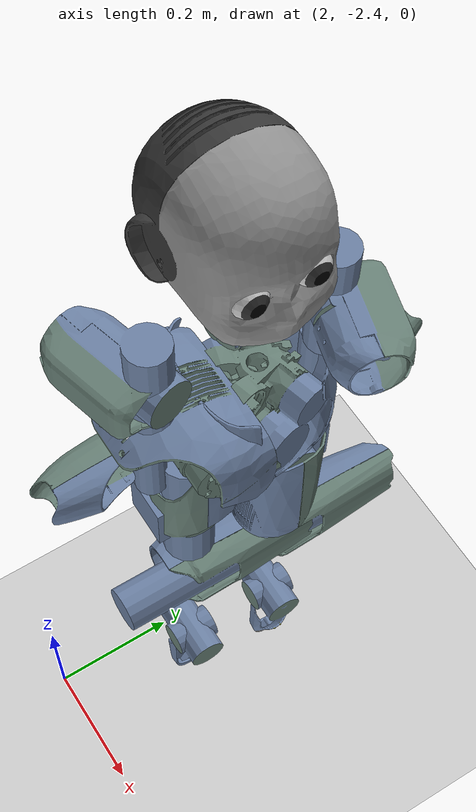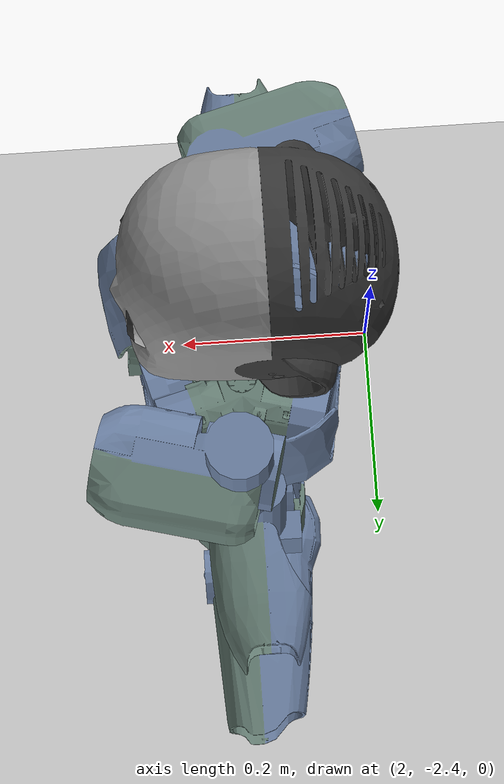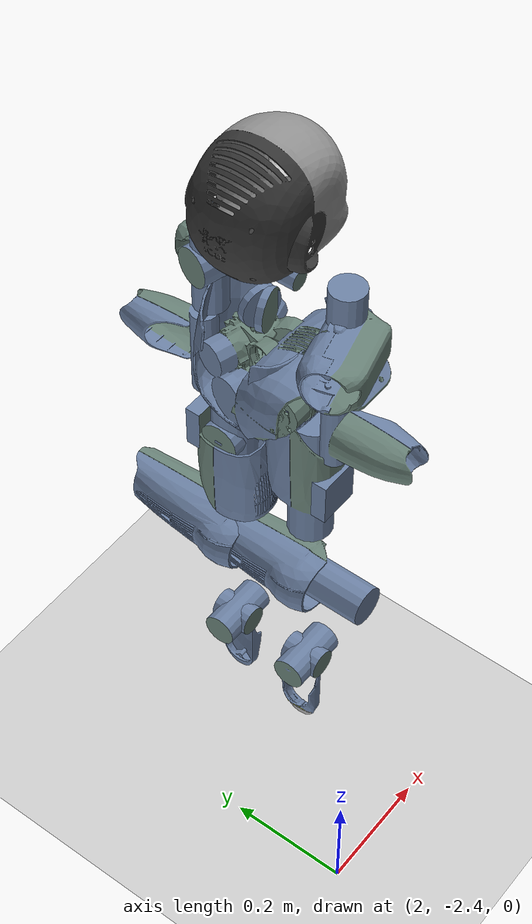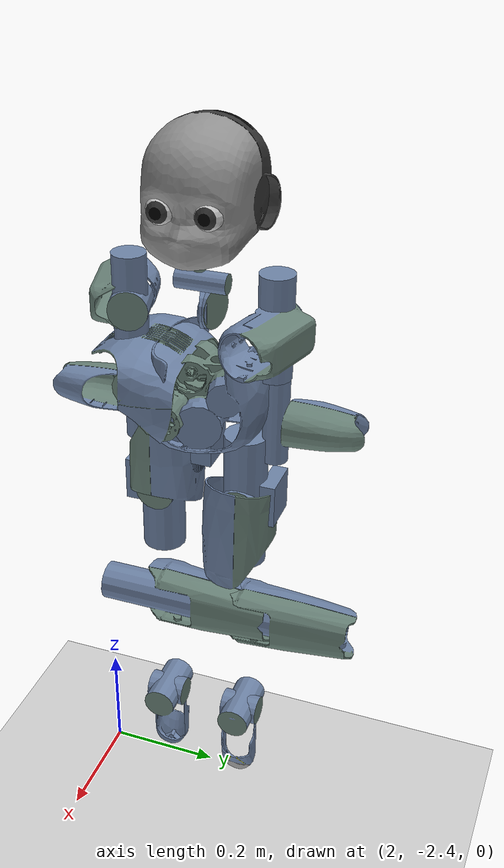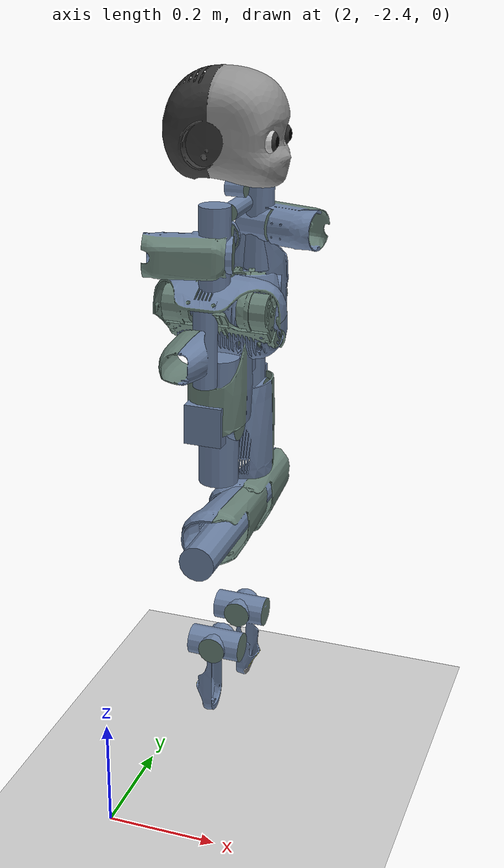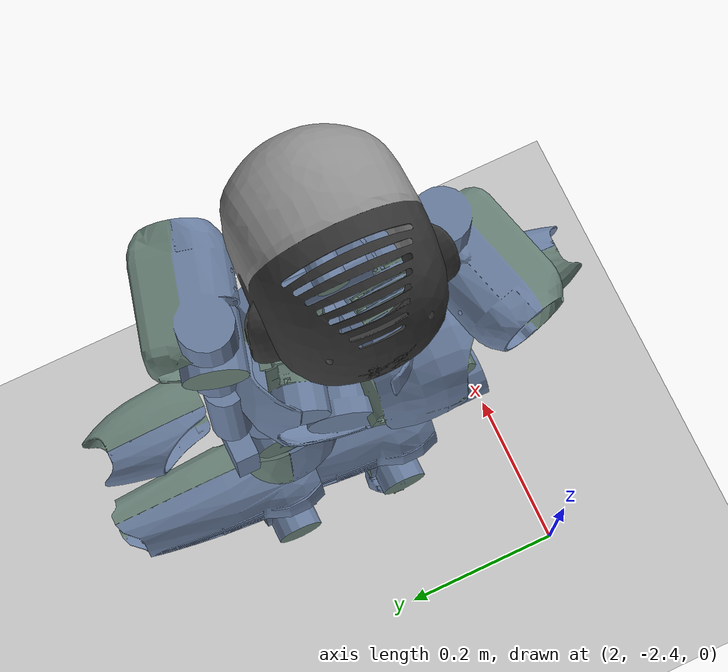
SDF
<sdf version="1.6">
 <world name="default">
  <model name="ground_plane">
   <static>1</static>
   <link name="link">
    <collision name="collision">
     <geometry><plane><normal>0 0 1</normal><size>100 100</size></plane></geometry>
     <surface><friction><ode><mu>100</mu><mu2>50</mu2></ode></friction></surface>
    </collision>
    <visual name="visual">
     <cast_shadows>0</cast_shadows>
     <geometry><plane><normal>0 0 1</normal><size>100 100</size></plane></geometry>
     <material>
      <script><uri>file://media/materials/scripts/gazebo.material</uri><name>Gazebo/Grey</name></script>
     </material>
    </visual>
   </link>
  </model>
  <model name="iCub">
   <pose>2.14823 -2.15649 0.858345 -9e-06 -0.009093 3.14</pose>
   <link name="root_link">
    <inertial>
     <mass>4.72</mass>
     <inertia><ixx>0.01</ixx><ixy>0</ixy><ixz>0</ixz><iyy>0.01</iyy><iyz>0</iyz><izz>0.01</izz></inertia>
    </inertial>
    <collision name="root_link_collision">
     <geometry>
      <mesh><scale>1 1 1</scale><uri>model://icub/meshes/collision/icub_simple_collision_root_link.dae</uri></mesh>
     </geometry>
    </collision>
    <visual name="root_link_visual">
     <geometry><mesh><scale>1 1 1</scale><uri>model://icub/meshes/visual/icub_root_link.dae</uri></mesh></geometry>
    </visual>
   </link>
   <link name="l_hip_1">
    <pose>0 -0.0681 -0.1199 3e-06 1.57079 3.14159</pose>
    <inertial>
     <pose>0 -0.0782 0 0 -0 0</pose>
     <mass>0.754</mass>
     <inertia>
      <ixx>0.01</ixx>
      <ixy>2.059e-06</ixy>
      <ixz>1.451e-06</ixz>
      <iyy>0.01</iyy>
      <iyz>1.545e-06</iyz>
      <izz>0.01</izz>
     </inertia>
    </inertial>
    <collision name="l_hip_1_collision">
     <pose>0 0 0 -0.785403 1.57079 -2.35619</pose>
     <geometry>
      <mesh><scale>1 1 1</scale><uri>model://icub/meshes/collision/icub_simple_collision_l_hip_1.dae</uri></mesh>
     </geometry>
    </collision>
    <visual name="l_hip_1_visual">
     <pose>0 0 0 -0.785403 1.57079 -2.35619</pose>
     <geometry><mesh><scale>1 1 1</scale><uri>model://icub/meshes/visual/icub_l_hip_1.dae</uri></mesh></geometry>
    </visual>
   </link>
   <joint name="l_hip_pitch" type="revolute">
    <child>l_hip_1</child>
    <parent>root_link</parent>
    <axis>
     <xyz>3e-06 1 0</xyz>
     <limit><lower>-0.767945</lower><upper>2.30383</upper><effort>84</effort><velocity>100</velocity></limit>
     <dynamics>
      <damping>1</damping>
      <friction>0</friction>
      <spring_reference>0</spring_reference>
      <spring_stiffness>0</spring_stiffness>
     </dynamics>
     <use_parent_model_frame>1</use_parent_model_frame>
    </axis>
   </joint>
   <link name="l_hip_2">
    <pose>0 -0.0681 -0.1199 3.14159 -7e-06 3.14159</pose>
    <inertial>
     <pose>0 0 0.03045 0 -0 0</pose>
     <mass>0.526</mass>
     <inertia>
      <ixx>0.01</ixx>
      <ixy>-7.4e-08</ixy>
      <ixz>1.0835e-05</ixz>
      <iyy>0.01</iyy>
      <iyz>-6.2e-08</iyz>
      <izz>0.01</izz>
     </inertia>
    </inertial>
    <collision name="l_hip_2_collision">
     <pose>0 0 0 0.785363 -1.57079 2.35623</pose>
     <geometry>
      <mesh><scale>1 1 1</scale><uri>model://icub/meshes/collision/icub_simple_collision_l_hip_2.dae</uri></mesh>
     </geometry>
    </collision>
    <visual name="l_hip_2_visual">
     <pose>0 0 0 0.785363 -1.57079 2.35623</pose>
     <geometry><mesh><scale>1 1 1</scale><uri>model://icub/meshes/visual/icub_l_hip_2.dae</uri></mesh></geometry>
    </visual>
   </link>
   <joint name="l_hip_roll" type="revolute">
    <child>l_hip_2</child>
    <parent>l_hip_1</parent>
    <axis>
     <xyz>-1 3e-06 7e-06</xyz>
     <limit><lower>-0.296706</lower><upper>2.07694</upper><effort>84</effort><velocity>100</velocity></limit>
     <dynamics>
      <damping>1</damping>
      <friction>0</friction>
      <spring_reference>0</spring_reference>
      <spring_stiffness>0</spring_stiffness>
     </dynamics>
     <use_parent_model_frame>1</use_parent_model_frame>
    </axis>
   </joint>
   <link name="l_hip_3">
    <pose>-0 -0.0681 -0.1864 3.14159 -7e-06 3.14159</pose>
    <inertial>
     <mass>0.1</mass>
     <inertia><ixx>0.01</ixx><ixy>0</ixy><ixz>0</ixz><iyy>0.01</iyy><iyz>0</iyz><izz>0.01</izz></inertia>
    </inertial>
   </link>
   <joint name="l_leg_ft_sensor" type="revolute">
    <child>l_hip_3</child>
    <parent>l_hip_2</parent>
    <axis>
     <xyz>0 0 0</xyz>
     <limit><lower>0</lower><upper>0</upper><effort>0</effort><velocity>0</velocity></limit>
     <dynamics><spring_reference>0</spring_reference><spring_stiffness>0</spring_stiffness></dynamics>
     <use_parent_model_frame>1</use_parent_model_frame>
    </axis>
    <sensor name="left_leg_ft" type="force_torque">
     <always_on>1</always_on>
     <update_rate>100</update_rate>
     <plugin name="left_leg_ft_plugin" filename="libgazebo_yarp_forcetorque.so">
      <yarpConfigurationFile>model://icub/conf/FT/gazebo_icub_left_leg_ft.ini</yarpConfigurationFile>
     </plugin>
    </sensor>
   </joint>
   <link name="l_upper_leg">
    <pose>0 -0.0681 -0.1199 1.57079 -7e-06 3.14159</pose>
    <inertial>
     <pose>0.00144 -0.15943 -0.00039 0 -0 0</pose>
     <mass>2.175</mass>
     <inertia>
      <ixx>0.01</ixx>
      <ixy>-6.726e-05</ixy>
      <ixz>2.267e-06</ixz>
      <iyy>0.01</iyy>
      <iyz>3.63726e-05</iyz>
      <izz>0.01</izz>
     </inertia>
    </inertial>
    <collision name="l_upper_leg_collision">
     <pose>0 0 0 -2.67797 1.57079 -1.10716</pose>
     <geometry>
      <mesh><scale>1 1 1</scale><uri>model://icub/meshes/collision/icub_simple_collision_l_thigh.dae</uri></mesh>
     </geometry>
    </collision>
    <visual name="l_upper_leg_visual">
     <pose>0 0 0 -2.67797 1.57079 -1.10716</pose>
     <geometry><mesh><scale>1 1 1</scale><uri>model://icub/meshes/visual/icub_l_thigh.dae</uri></mesh></geometry>
    </visual>
   </link>
   <joint name="l_hip_yaw" type="revolute">
    <child>l_upper_leg</child>
    <parent>l_hip_3</parent>
    <axis>
     <xyz>7e-06 -6e-06 1</xyz>
     <limit><lower>-1.37881</lower><upper>1.37881</upper><effort>40</effort><velocity>100</velocity></limit>
     <dynamics>
      <damping>1</damping>
      <friction>0</friction>
      <spring_reference>0</spring_reference>
      <spring_stiffness>0</spring_stiffness>
     </dynamics>
     <use_parent_model_frame>1</use_parent_model_frame>
    </axis>
   </joint>
   <link name="l_lower_leg">
    <pose>-2e-06 -0.068099 -0.3435 2.09198 -1.57078 -0.521189</pose>
    <inertial>
     <pose>-0.1071 0.00182 0.00211 0 -0 0</pose>
     <mass>1.264</mass>
     <inertia>
      <ixx>0.01</ixx>
      <ixy>-0.000185699</ixy>
      <ixz>-6.3147e-05</ixz>
      <iyy>0.01</iyy>
      <iyz>7.86e-07</iyz>
      <izz>0.01</izz>
     </inertia>
    </inertial>
    <collision name="l_lower_leg_collision">
     <pose>0 0 0 -3.14159 -0 1.5708</pose>
     <geometry>
      <mesh><scale>1 1 1</scale><uri>model://icub/meshes/collision/icub_simple_collision_l_shank.dae</uri></mesh>
     </geometry>
    </collision>
    <visual name="l_lower_leg_visual">
     <pose>0 0 0 -3.14159 -0 1.5708</pose>
     <geometry><mesh><scale>1 1 1</scale><uri>model://icub/meshes/visual/icub_l_shank.dae</uri></mesh></geometry>
    </visual>
   </link>
   <joint name="l_knee" type="revolute">
    <child>l_lower_leg</child>
    <parent>l_upper_leg</parent>
    <axis>
     <xyz>5e-06 1 6e-06</xyz>
     <limit><lower>-2.18166</lower><upper>0.401426</upper><effort>30</effort><velocity>100</velocity></limit>
     <dynamics>
      <damping>1</damping>
      <friction>0</friction>
      <spring_reference>0</spring_reference>
      <spring_stiffness>0</spring_stiffness>
     </dynamics>
     <use_parent_model_frame>1</use_parent_model_frame>
    </axis>
   </joint>
   <link name="l_ankle_1">
    <pose>-4e-06 -0.068097 -0.5565 0.52118 -1.57078 -0.521189</pose>
    <inertial>
     <pose>-0.0054 0.00163 0.0172 0 -0 0</pose>
     <mass>0.746</mass>
     <inertia>
      <ixx>0.01</ixx>
      <ixy>-7.081e-06</ixy>
      <ixz>4.1421e-05</ixz>
      <iyy>0.01</iyy>
      <iyz>2.0817e-05</iyz>
      <izz>0.01</izz>
     </inertia>
    </inertial>
    <collision name="l_ankle_1_collision">
     <pose>0 -0 0 1.5708 -0 0</pose>
     <geometry>
      <mesh><scale>1 1 1</scale><uri>model://icub/meshes/collision/icub_simple_collision_l_ankle_1.dae</uri></mesh>
     </geometry>
    </collision>
    <visual name="l_ankle_1_visual">
     <pose>0 -0 0 1.5708 -0 0</pose>
     <geometry><mesh><scale>1 1 1</scale><uri>model://icub/meshes/visual/icub_l_ankle_1.dae</uri></mesh></geometry>
    </visual>
   </link>
   <joint name="l_ankle_pitch" type="revolute">
    <child>l_ankle_1</child>
    <parent>l_lower_leg</parent>
    <axis>
     <xyz>-9e-06 -1 -6e-06</xyz>
     <limit><lower>-0.733038</lower><upper>0.366519</upper><effort>24</effort><velocity>100</velocity></limit>
     <dynamics>
      <damping>1</damping>
      <friction>0</friction>
      <spring_reference>0</spring_reference>
      <spring_stiffness>0</spring_stiffness>
     </dynamics>
     <use_parent_model_frame>1</use_parent_model_frame>
    </axis>
   </joint>
   <link name="l_ankle_2">
    <pose>-4e-06 -0.068097 -0.5565 3.14159 -7e-06 3.14158</pose>
    <inertial>
     <pose>0 0 0.037 0 -0 0</pose>
     <mass>0.2675</mass>
     <inertia><ixx>0.01</ixx><ixy>0</ixy><ixz>0</ixz><iyy>0.01</iyy><iyz>0</iyz><izz>0.01</izz></inertia>
    </inertial>
   </link>
   <joint name="l_ankle_roll" type="revolute">
    <child>l_ankle_2</child>
    <parent>l_ankle_1</parent>
    <axis>
     <xyz>-1 9e-06 7e-06</xyz>
     <limit><lower>-0.418879</lower><upper>0.418879</upper><effort>11</effort><velocity>100</velocity></limit>
     <dynamics>
      <damping>1</damping>
      <friction>0</friction>
      <spring_reference>0</spring_reference>
      <spring_stiffness>0</spring_stiffness>
     </dynamics>
     <use_parent_model_frame>1</use_parent_model_frame>
    </axis>
   </joint>
   <link name="l_foot">
    <pose>-4e-06 -0.068097 -0.5935 3.14159 -7e-06 3.14158</pose>
    <inertial>
     <pose>0.024069 -0.000614 -0.028415 0 -0 0</pose>
     <mass>0.5935</mass>
     <inertia>
      <ixx>0.01</ixx>
      <ixy>-4.51893e-06</ixy>
      <ixz>0.000567785</ixz>
      <iyy>0.01</iyy>
      <iyz>-6.62361e-07</iyz>
      <izz>0.01</izz>
     </inertia>
    </inertial>
    <collision name="l_foot_collision">
     <pose>0.03 0 -0.01 0 -0 0</pose>
     <geometry><box><size>0.15 0.07 0.03</size></box></geometry>
     <max_contacts>4</max_contacts>
     <surface>
      <contact>
       <ode>
        <soft_erp>0.2</soft_erp>
        <soft_cfm>0</soft_cfm>
        <kp>1.8e+07</kp>
        <kd>100</kd>
        <max_vel>100</max_vel>
        <min_depth>0.0001</min_depth>
       </ode>
      </contact>
      <friction><ode><mu>1</mu><mu2>1</mu2><fdir1>0 0 0</fdir1><slip1>0</slip1><slip2>0</slip2></ode></friction>
      <bounce><restitution_coefficient>0</restitution_coefficient><threshold>100000</threshold></bounce>
     </surface>
    </collision>
    <visual name="l_foot_visual">
     <pose>0 -0 -0.037 -0.785403 1.57079 -0.785403</pose>
     <geometry><mesh><scale>1 1 1</scale><uri>model://icub/meshes/visual/icub_l_foot.dae</uri></mesh></geometry>
    </visual>
   </link>
   <joint name="l_foot_ft_sensor" type="revolute">
    <child>l_foot</child>
    <parent>l_ankle_2</parent>
    <axis>
     <xyz>0 0 0</xyz>
     <limit><lower>0</lower><upper>0</upper><effort>0</effort><velocity>0</velocity></limit>
     <dynamics><spring_reference>0</spring_reference><spring_stiffness>0</spring_stiffness></dynamics>
     <use_parent_model_frame>1</use_parent_model_frame>
    </axis>
    <sensor name="left_foot_ft" type="force_torque">
     <always_on>1</always_on>
     <update_rate>100</update_rate>
     <plugin name="left_foot_ft_plugin" filename="libgazebo_yarp_forcetorque.so">
      <yarpConfigurationFile>model://icub/conf/FT/gazebo_icub_left_foot_ft.ini</yarpConfigurationFile>
     </plugin>
    </sensor>
   </joint>
   <link name="r_hip_1">
    <pose>0 0.0681 -0.1199 3.14159 1.57079 -3.14159</pose>
    <inertial>
     <pose>0 -0.0782 0 0 -0 0</pose>
     <mass>0.754</mass>
     <inertia><ixx>0.01</ixx><ixy>0</ixy><ixz>0</ixz><iyy>0.01</iyy><iyz>0</iyz><izz>0.01</izz></inertia>
    </inertial>
    <collision name="r_hip_1_collision">
     <pose>0 0 0 1.76819 -1.57079 2.76109</pose>
     <geometry>
      <mesh><scale>1 1 1</scale><uri>model://icub/meshes/collision/icub_simple_collision_r_hip_1.dae</uri></mesh>
     </geometry>
    </collision>
    <visual name="r_hip_1_visual">
     <pose>0 0 0 1.76819 -1.57079 2.76109</pose>
     <geometry><mesh><scale>1 1 1</scale><uri>model://icub/meshes/visual/icub_r_hip_1.dae</uri></mesh></geometry>
    </visual>
   </link>
   <joint name="r_hip_pitch" type="revolute">
    <child>r_hip_1</child>
    <parent>root_link</parent>
    <axis>
     <xyz>0 1 0</xyz>
     <limit><lower>-0.767945</lower><upper>2.30383</upper><effort>84</effort><velocity>100</velocity></limit>
     <dynamics>
      <damping>1</damping>
      <friction>0</friction>
      <spring_reference>0</spring_reference>
      <spring_stiffness>0</spring_stiffness>
     </dynamics>
     <use_parent_model_frame>1</use_parent_model_frame>
    </axis>
   </joint>
   <link name="r_hip_2">
    <pose>0 0.0681 -0.1199 -3.14159 -7e-06 -3.14159</pose>
    <inertial>
     <pose>0 0 0.03045 0 -0 0</pose>
     <mass>0.526</mass>
     <inertia><ixx>0.01</ixx><ixy>0</ixy><ixz>0</ixz><iyy>0.01</iyy><iyz>0</iyz><izz>0.01</izz></inertia>
    </inertial>
    <collision name="r_hip_2_collision">
     <pose>0 0 0 -2.35627 -1.57079 2.35627</pose>
     <geometry>
      <mesh><scale>1 1 1</scale><uri>model://icub/meshes/collision/icub_simple_collision_r_hip_2.dae</uri></mesh>
     </geometry>
    </collision>
    <visual name="r_hip_2_visual">
     <pose>0 0 0 -2.35627 -1.57079 2.35627</pose>
     <geometry><mesh><scale>1 1 1</scale><uri>model://icub/meshes/visual/icub_r_hip_2.dae</uri></mesh></geometry>
    </visual>
   </link>
   <joint name="r_hip_roll" type="revolute">
    <child>r_hip_2</child>
    <parent>r_hip_1</parent>
    <axis>
     <xyz>1 0 -7e-06</xyz>
     <limit><lower>-0.296706</lower><upper>2.07694</upper><effort>84</effort><velocity>100</velocity></limit>
     <dynamics>
      <damping>1</damping>
      <friction>0</friction>
      <spring_reference>0</spring_reference>
      <spring_stiffness>0</spring_stiffness>
     </dynamics>
     <use_parent_model_frame>1</use_parent_model_frame>
    </axis>
   </joint>
   <link name="r_hip_3">
    <pose>-0 0.0681 -0.1864 -3.14159 -7e-06 -3.14159</pose>
    <inertial>
     <mass>0.1</mass>
     <inertia><ixx>0.01</ixx><ixy>0</ixy><ixz>0</ixz><iyy>0.01</iyy><iyz>0</iyz><izz>0.01</izz></inertia>
    </inertial>
   </link>
   <joint name="r_leg_ft_sensor" type="revolute">
    <child>r_hip_3</child>
    <parent>r_hip_2</parent>
    <axis>
     <xyz>0 0 0</xyz>
     <limit><lower>0</lower><upper>0</upper><effort>0</effort><velocity>0</velocity></limit>
     <dynamics><spring_reference>0</spring_reference><spring_stiffness>0</spring_stiffness></dynamics>
     <use_parent_model_frame>1</use_parent_model_frame>
    </axis>
    <sensor name="right_leg_ft" type="force_torque">
     <always_on>1</always_on>
     <update_rate>100</update_rate>
     <plugin name="right_leg_ft_plugin" filename="libgazebo_yarp_forcetorque.so">
      <yarpConfigurationFile>model://icub/conf/FT/gazebo_icub_right_leg_ft.ini</yarpConfigurationFile>
     </plugin>
    </sensor>
   </joint>
   <link name="r_upper_leg">
    <pose>0 0.0681 -0.1199 1.57079 -7e-06 3.14159</pose>
    <inertial>
     <pose>0.00144 -0.15943 0.00039 0 -0 0</pose>
     <mass>2.175</mass>
     <inertia>
      <ixx>0.01</ixx>
      <ixy>0</ixy>
      <ixz>0</ixz>
      <iyy>0.01</iyy>
      <iyz>-2.71051e-20</iyz>
      <izz>0.01</izz>
     </inertia>
    </inertial>
    <collision name="r_upper_leg_collision">
     <pose>0 0 0 1.57087 -1.57079 -7.3e-05</pose>
     <geometry>
      <mesh><scale>1 1 1</scale><uri>model://icub/meshes/collision/icub_simple_collision_r_thigh.dae</uri></mesh>
     </geometry>
    </collision>
    <visual name="r_upper_leg_visual">
     <pose>0 0 0 1.57087 -1.57079 -7.3e-05</pose>
     <geometry><mesh><scale>1 1 1</scale><uri>model://icub/meshes/visual/icub_r_thigh.dae</uri></mesh></geometry>
    </visual>
   </link>
   <joint name="r_hip_yaw" type="revolute">
    <child>r_upper_leg</child>
    <parent>r_hip_3</parent>
    <axis>
     <xyz>-7e-06 4e-06 -1</xyz>
     <limit><lower>-1.37881</lower><upper>1.37881</upper><effort>40</effort><velocity>100</velocity></limit>
     <dynamics>
      <damping>1</damping>
      <friction>0</friction>
      <spring_reference>0</spring_reference>
      <spring_stiffness>0</spring_stiffness>
     </dynamics>
     <use_parent_model_frame>1</use_parent_model_frame>
    </axis>
   </joint>
   <link name="r_lower_leg">
    <pose>-2e-06 0.068101 -0.3435 1.89254 -1.57078 -0.321751</pose>
    <inertial>
     <pose>-0.1071 0.00182 -0.00211 0 -0 0</pose>
     <mass>1.264</mass>
     <inertia>
      <ixx>0.01</ixx>
      <ixy>5.42101e-20</ixy>
      <ixz>-5.42101e-20</ixz>
      <iyy>0.01</iyy>
      <iyz>8.47033e-22</iyz>
      <izz>0.01</izz>
     </inertia>
    </inertial>
    <collision name="r_lower_leg_collision">
     <pose>0 0 -0 3.14159 -0 1.5708</pose>
     <geometry>
      <mesh><scale>1 1 1</scale><uri>model://icub/meshes/collision/icub_simple_collision_r_shank.dae</uri></mesh>
     </geometry>
    </collision>
    <visual name="r_lower_leg_visual">
     <pose>0 0 -0 3.14159 -0 1.5708</pose>
     <geometry><mesh><scale>1 1 1</scale><uri>model://icub/meshes/visual/icub_r_shank.dae</uri></mesh></geometry>
    </visual>
   </link>
   <joint name="r_knee" type="revolute">
    <child>r_lower_leg</child>
    <parent>r_upper_leg</parent>
    <axis>
     <xyz>3e-06 1 4e-06</xyz>
     <limit><lower>-2.18166</lower><upper>0.401426</upper><effort>30</effort><velocity>100</velocity></limit>
     <dynamics>
      <damping>1</damping>
      <friction>0</friction>
      <spring_reference>0</spring_reference>
      <spring_stiffness>0</spring_stiffness>
     </dynamics>
     <use_parent_model_frame>1</use_parent_model_frame>
    </axis>
   </joint>
   <link name="r_ankle_1">
    <pose>-4e-06 0.068102 -0.5565 -2.81984 -1.57078 -0.321751</pose>
    <inertial>
     <pose>-0.0054 0.00163 -0.0172 0 -0 0</pose>
     <mass>0.746</mass>
     <inertia>
      <ixx>0.01</ixx>
      <ixy>-1.69407e-21</ixy>
      <ixz>1.35525e-20</ixz>
      <iyy>0.01</iyy>
      <iyz>3.38813e-21</iyz>
      <izz>0.01</izz>
     </inertia>
    </inertial>
    <collision name="r_ankle_1_collision">
     <pose>0 -0 -0 -1.5708 -0 0</pose>
     <geometry>
      <mesh><scale>1 1 1</scale><uri>model://icub/meshes/collision/icub_simple_collision_r_ankle_1.dae</uri></mesh>
     </geometry>
    </collision>
    <visual name="r_ankle_1_visual">
     <pose>0 -0 -0 -1.5708 -0 0</pose>
     <geometry><mesh><scale>1 1 1</scale><uri>model://icub/meshes/visual/icub_r_ankle_1.dae</uri></mesh></geometry>
    </visual>
   </link>
   <joint name="r_ankle_pitch" type="revolute">
    <child>r_ankle_1</child>
    <parent>r_lower_leg</parent>
    <axis>
     <xyz>1e-06 -1 -4e-06</xyz>
     <limit><lower>-0.733038</lower><upper>0.366519</upper><effort>24</effort><velocity>100</velocity></limit>
     <dynamics>
      <damping>1</damping>
      <friction>0</friction>
      <spring_reference>0</spring_reference>
      <spring_stiffness>0</spring_stiffness>
     </dynamics>
     <use_parent_model_frame>1</use_parent_model_frame>
    </axis>
   </joint>
   <link name="r_ankle_2">
    <pose>-4e-06 0.068102 -0.5565 3.14159 -1.4e-05 -3.14159</pose>
    <inertial>
     <pose>0 0 0.037 0 -0 0</pose>
     <mass>0.2675</mass>
     <inertia><ixx>0.01</ixx><ixy>0</ixy><ixz>0</ixz><iyy>0.01</iyy><iyz>0</iyz><izz>0.01</izz></inertia>
    </inertial>
   </link>
   <joint name="r_ankle_roll" type="revolute">
    <child>r_ankle_2</child>
    <parent>r_ankle_1</parent>
    <axis>
     <xyz>1 3e-06 -1.4e-05</xyz>
     <limit><lower>-0.418879</lower><upper>0.418879</upper><effort>11</effort><velocity>100</velocity></limit>
     <dynamics>
      <damping>1</damping>
      <friction>0</friction>
      <spring_reference>0</spring_reference>
      <spring_stiffness>0</spring_stiffness>
     </dynamics>
     <use_parent_model_frame>1</use_parent_model_frame>
    </axis>
   </joint>
   <link name="r_foot">
    <pose>-5e-06 0.068102 -0.5935 3.14159 -1.4e-05 -3.14159</pose>
    <inertial>
     <pose>0.024069 0.000614 -0.028415 0 -0 0</pose>
     <mass>0.5935</mass>
     <inertia>
      <ixx>0.01</ixx>
      <ixy>4.51893e-06</ixy>
      <ixz>0.000567784</ixz>
      <iyy>0.01</iyy>
      <iyz>6.62535e-07</iyz>
      <izz>0.01</izz>
     </inertia>
    </inertial>
    <collision name="r_foot_collision">
     <pose>0.03 0 -0.01 0 -0 0</pose>
     <geometry><box><size>0.15 0.07 0.03</size></box></geometry>
     <max_contacts>4</max_contacts>
     <surface>
      <contact>
       <ode>
        <soft_erp>0.2</soft_erp>
        <soft_cfm>0</soft_cfm>
        <kp>1.8e+07</kp>
        <kd>100</kd>
        <max_vel>100</max_vel>
        <min_depth>0.0001</min_depth>
       </ode>
      </contact>
      <friction><ode><mu>1</mu><mu2>1</mu2><fdir1>0 0 0</fdir1><slip1>0</slip1><slip2>0</slip2></ode></friction>
      <bounce><restitution_coefficient>0</restitution_coefficient><threshold>100000</threshold></bounce>
     </surface>
    </collision>
    <visual name="r_foot_visual">
     <pose>0 0 -0.037 -2.81983 1.57079 0.321763</pose>
     <geometry><mesh><scale>1 1 1</scale><uri>model://icub/meshes/visual/icub_r_foot.dae</uri></mesh></geometry>
    </visual>
   </link>
   <joint name="r_foot_ft_sensor" type="revolute">
    <child>r_foot</child>
    <parent>r_ankle_2</parent>
    <axis>
     <xyz>0 0 0</xyz>
     <limit><lower>0</lower><upper>0</upper><effort>0</effort><velocity>0</velocity></limit>
     <dynamics><spring_reference>0</spring_reference><spring_stiffness>0</spring_stiffness></dynamics>
     <use_parent_model_frame>1</use_parent_model_frame>
    </axis>
    <sensor name="right_foot_ft" type="force_torque">
     <always_on>1</always_on>
     <update_rate>100</update_rate>
     <plugin name="right_foot_ft_plugin" filename="libgazebo_yarp_forcetorque.so">
      <yarpConfigurationFile>model://icub/conf/FT/gazebo_icub_right_foot_ft.ini</yarpConfigurationFile>
     </plugin>
    </sensor>
   </joint>
   <link name="torso_1">
    <pose>0 0 0 3.14159 -1.57079 -3e-06</pose>
    <inertial>
     <mass>0.1</mass>
     <inertia>
      <ixx>0.01</ixx>
      <ixy>-4.263e-05</ixy>
      <ixz>-3.889e-08</ixz>
      <iyy>0.01</iyy>
      <iyz>0</iyz>
      <izz>0.01</izz>
     </inertia>
    </inertial>
    <collision name="torso_1_collision">
     <pose>0 0 0 -1.5708 0 0</pose>
     <geometry>
      <mesh><scale>1 1 1</scale><uri>model://icub/meshes/collision/icub_simple_collision_lap_belt_1.dae</uri></mesh>
     </geometry>
    </collision>
    <visual name="torso_1_visual">
     <pose>0 0 0 -1.5708 0 0</pose>
     <geometry>
      <mesh><scale>1 1 1</scale><uri>model://icub/meshes/visual/icub_lap_belt_1.dae</uri></mesh>
     </geometry>
    </visual>
   </link>
   <joint name="torso_pitch" type="revolute">
    <child>torso_1</child>
    <parent>root_link</parent>
    <axis>
     <xyz>-3e-06 -1 0</xyz>
     <limit><lower>-0.383972</lower><upper>1.46608</upper><effort>36</effort><velocity>100</velocity></limit>
     <dynamics>
      <damping>1</damping>
      <friction>0</friction>
      <spring_reference>0</spring_reference>
      <spring_stiffness>0</spring_stiffness>
     </dynamics>
     <use_parent_model_frame>1</use_parent_model_frame>
    </axis>
   </joint>
   <link name="torso_2">
    <pose>0 -0 0.032 -3.14159 4e-06 1.57079</pose>
    <inertial>
     <mass>0.1</mass>
     <inertia>
      <ixx>0.01</ixx>
      <ixy>-1.923e-06</ixy>
      <ixz>5.095e-05</ixz>
      <iyy>0.01</iyy>
      <iyz>-3.849e-07</iyz>
      <izz>0.01</izz>
     </inertia>
    </inertial>
   </link>
   <joint name="torso_roll" type="revolute">
    <child>torso_2</child>
    <parent>torso_1</parent>
    <axis>
     <xyz>1 -3e-06 -7e-06</xyz>
     <limit><lower>-0.680678</lower><upper>0.680678</upper><effort>80</effort><velocity>100</velocity></limit>
     <dynamics>
      <damping>1</damping>
      <friction>0</friction>
      <spring_reference>0</spring_reference>
      <spring_stiffness>0</spring_stiffness>
     </dynamics>
     <use_parent_model_frame>1</use_parent_model_frame>
    </axis>
   </joint>
   <link name="chest">
    <pose>-0.0055 0 0.032 1.5708 -7e-06 -3.14159</pose>
    <inertial>
     <pose>0.002229 0.075 -0 0 -0 0</pose>
     <mass>4.81</mass>
     <inertia>
      <ixx>0.07472</ixx>
      <ixy>-3.6e-06</ixy>
      <ixz>-4.705e-05</ixz>
      <iyy>0.08145</iyy>
      <iyz>0.004567</iyz>
      <izz>0.01306</izz>
     </inertia>
    </inertial>
    <collision name="chest_collision">
     <pose>-0.0055 -0 -0 -1.10717 -1.57079 2.67798</pose>
     <geometry>
      <mesh><scale>1 1 1</scale><uri>model://icub/meshes/collision/icub_simple_collision_chest.dae</uri></mesh>
     </geometry>
    </collision>
    <visual name="chest_visual">
     <pose>-0.0055 -0 -0 -1.10717 -1.57079 2.67798</pose>
     <geometry><mesh><scale>1 1 1</scale><uri>model://icub/meshes/visual/icub_chest.dae</uri></mesh></geometry>
    </visual>
   </link>
   <joint name="torso_yaw" type="revolute">
    <child>chest</child>
    <parent>torso_2</parent>
    <axis>
     <xyz>-7e-06 0 -1</xyz>
     <limit><lower>-1.02974</lower><upper>1.02974</upper><effort>80</effort><velocity>100</velocity></limit>
     <dynamics>
      <damping>1</damping>
      <friction>0</friction>
      <spring_reference>0</spring_reference>
      <spring_stiffness>0</spring_stiffness>
     </dynamics>
     <use_parent_model_frame>1</use_parent_model_frame>
    </axis>
   </joint>
   <link name="l_shoulder_1">
    <pose>-0.010749 -0.11026 0.1753 -0.261794 -1.57079 -1e-06</pose>
    <inertial>
     <pose>-5e-06 0.0187 -0.00119 0 -0 0</pose>
     <mass>0.189</mass>
     <inertia>
      <ixx>0.01</ixx>
      <ixy>9e-09</ixy>
      <ixz>0</ixz>
      <iyy>0.01</iyy>
      <iyz>-1.7e-08</iyz>
      <izz>0.01</izz>
     </inertia>
    </inertial>
    <collision name="l_shoulder_1_collision">
     <pose>0 0.109285 -0.005211 -0.301063 1.57079 -1.87186</pose>
     <geometry>
      <mesh>
       <scale>1 1 1</scale>
       <uri>model://icub/meshes/collision/icub_simple_collision_l_shoulder_1.dae</uri>
      </mesh>
     </geometry>
    </collision>
    <visual name="l_shoulder_1_visual">
     <pose>0 0.109285 -0.005211 -0.301063 1.57079 -1.87186</pose>
     <geometry>
      <mesh><scale>1 1 1</scale><uri>model://icub/meshes/visual/icub_l_shoulder_1.dae</uri></mesh>
     </geometry>
    </visual>
   </link>
   <joint name="l_shoulder_pitch" type="revolute">
    <child>l_shoulder_1</child>
    <parent>chest</parent>
    <axis>
     <xyz>-0.258815 -0.965927 3e-06</xyz>
     <limit><lower>-1.65806</lower><upper>0.0872665</upper><effort>84</effort><velocity>100</velocity></limit>
     <dynamics>
      <damping>1</damping>
      <friction>0</friction>
      <spring_reference>0</spring_reference>
      <spring_stiffness>0</spring_stiffness>
     </dynamics>
     <use_parent_model_frame>1</use_parent_model_frame>
    </axis>
   </joint>
   <link name="l_shoulder_2">
    <pose>-0.010749 -0.11026 0.1753 3.14159 1e-06 -1.83259</pose>
    <inertial>
     <pose>9.4e-05 -0.00627 0.0166 0 -0 0</pose>
     <mass>0.179</mass>
     <inertia>
      <ixx>0.01</ixx>
      <ixy>4.66e-07</ixy>
      <ixz>3.65e-07</ixz>
      <iyy>0.01</iyy>
      <iyz>-2.0524e-05</iyz>
      <izz>0.01</izz>
     </inertia>
    </inertial>
    <collision name="l_shoulder_2_collision">
     <pose>-0.001545 -0.005211 -0 -2.14033 1.57079 -0.569533</pose>
     <geometry>
      <mesh>
       <scale>1 1 1</scale>
       <uri>model://icub/meshes/collision/icub_simple_collision_l_shoulder_2.dae</uri>
      </mesh>
     </geometry>
    </collision>
    <visual name="l_shoulder_2_visual">
     <pose>-0.001545 -0.005211 -0 -2.14033 1.57079 -0.569533</pose>
     <geometry>
      <mesh><scale>1 1 1</scale><uri>model://icub/meshes/visual/icub_l_shoulder_2.dae</uri></mesh>
     </geometry>
    </visual>
   </link>
   <joint name="l_shoulder_roll" type="revolute">
    <child>l_shoulder_2</child>
    <parent>l_shoulder_1</parent>
    <axis>
     <xyz>-0.965927 0.258815 7e-06</xyz>
     <limit><lower>0</lower><upper>2.80649</upper><effort>84</effort><velocity>100</velocity></limit>
     <dynamics>
      <damping>1</damping>
      <friction>0</friction>
      <spring_reference>0</spring_reference>
      <spring_stiffness>0</spring_stiffness>
     </dynamics>
     <use_parent_model_frame>1</use_parent_model_frame>
    </axis>
   </joint>
   <link name="l_shoulder_3">
    <pose>-0.010749 -0.11026 0.1753 3.14159 -7e-06 -3.14159</pose>
    <inertial>
     <pose>0.005594 9.8e-05 0.050135 0 -0 0</pose>
     <mass>0.156157</mass>
     <inertia>
      <ixx>0.01</ixx>
      <ixy>-5.662e-08</ixy>
      <ixz>-4.3618e-06</ixz>
      <iyy>0.01</iyy>
      <iyz>-7.42844e-07</iyz>
      <izz>0.01</izz>
     </inertia>
    </inertial>
   </link>
   <joint name="l_shoulder_yaw" type="revolute">
    <child>l_shoulder_3</child>
    <parent>l_shoulder_2</parent>
    <axis>
     <xyz>-7e-06 3e-06 -1</xyz>
     <limit><lower>-0.645772</lower><upper>1.74533</upper><effort>34</effort><velocity>100</velocity></limit>
     <dynamics>
      <damping>1</damping>
      <friction>0</friction>
      <spring_reference>0</spring_reference>
      <spring_stiffness>0</spring_stiffness>
     </dynamics>
     <use_parent_model_frame>1</use_parent_model_frame>
    </axis>
   </joint>
   <link name="l_upper_arm">
    <pose>-0.025749 -0.11026 0.1073 3.14159 -7e-06 -3.14159</pose>
    <inertial>
     <pose>-0.000156 -9.9e-05 0.0298 0 -0 0</pose>
     <mass>0.727843</mass>
     <inertia>
      <ixx>0.01</ixx>
      <ixy>-1.08e-06</ixy>
      <ixz>-2.29e-06</ixz>
      <iyy>0.01</iyy>
      <iyz>3.57e-06</iyz>
      <izz>0.01</izz>
     </inertia>
    </inertial>
    <collision name="l_upper_arm_collision">
     <pose>-0.020433 0.000144 -0.068 0 0 -1.309</pose>
     <geometry>
      <mesh><scale>1 1 1</scale><uri>model://icub/meshes/collision/icub_simple_collision_l_arm.dae</uri></mesh>
     </geometry>
    </collision>
    <visual name="l_upper_arm_visual">
     <pose>-0.020433 0.000144 -0.068 0 0 -1.309</pose>
     <geometry><mesh><scale>1 1 1</scale><uri>model://icub/meshes/visual/icub_l_arm.dae</uri></mesh></geometry>
    </visual>
   </link>
   <joint name="l_arm_ft_sensor" type="revolute">
    <child>l_upper_arm</child>
    <parent>l_shoulder_3</parent>
    <axis>
     <xyz>0 0 0</xyz>
     <limit><lower>0</lower><upper>0</upper><effort>0</effort><velocity>0</velocity></limit>
     <dynamics><spring_reference>0</spring_reference><spring_stiffness>0</spring_stiffness></dynamics>
     <use_parent_model_frame>1</use_parent_model_frame>
    </axis>
    <sensor name="left_arm_ft" type="force_torque">
     <always_on>1</always_on>
     <update_rate>100</update_rate>
     <plugin name="left_arm_ft_plugin" filename="libgazebo_yarp_forcetorque.so">
      <yarpConfigurationFile>model://icub/conf/FT/gazebo_icub_left_arm_ft.ini</yarpConfigurationFile>
     </plugin>
    </sensor>
   </joint>
   <link name="l_elbow_1">
    <pose>-0.02575 -0.11026 0.02302 3.14159 -7e-06 -3.14159</pose>
    <inertial>
     <pose>-0.0013 0.00371 -0.00105 0 -0 0</pose>
     <mass>0.1</mass>
     <inertia>
      <ixx>0.01</ixx>
      <ixy>-5.15e-07</ixy>
      <ixz>-4.08e-07</ixz>
      <iyy>0.01</iyy>
      <iyz>-3.71e-07</iyz>
      <izz>0.01</izz>
     </inertia>
    </inertial>
   </link>
   <joint name="l_elbow" type="revolute">
    <child>l_elbow_1</child>
    <parent>l_upper_arm</parent>
    <axis>
     <xyz>-1e-06 1 3e-06</xyz>
     <limit><lower>0.0959931</lower><upper>1.85005</upper><effort>20</effort><velocity>100</velocity></limit>
     <dynamics>
      <damping>1</damping>
      <friction>0</friction>
      <spring_reference>0</spring_reference>
      <spring_stiffness>0</spring_stiffness>
     </dynamics>
     <use_parent_model_frame>1</use_parent_model_frame>
    </axis>
   </joint>
   <link name="l_forearm">
    <pose>-0.01075 -0.11026 0.02302 -1.5708 3e-06 -1.57079</pose>
    <inertial>
     <pose>0.000347 0.066 0.00476 0 -0 0</pose>
     <mass>0.525</mass>
     <inertia>
      <ixx>0.01</ixx>
      <ixy>4.337e-06</ixy>
      <ixz>2.39e-07</ixz>
      <iyy>0.01</iyy>
      <iyz>1.9381e-05</iyz>
      <izz>0.01</izz>
     </inertia>
    </inertial>
    <collision name="l_forearm_collision">
     <pose>-0.000144 -0 0.020433 -2.66395 1.57079 -1.09315</pose>
     <geometry>
      <mesh><scale>1 1 1</scale><uri>model://icub/meshes/collision/icub_simple_collision_l_forearm.dae</uri></mesh>
     </geometry>
    </collision>
    <visual name="l_forearm_visual">
     <pose>-0.000144 -0 0.020433 -2.66395 1.57079 -1.09315</pose>
     <geometry><mesh><scale>1 1 1</scale><uri>model://icub/meshes/visual/icub_l_forearm.dae</uri></mesh></geometry>
    </visual>
   </link>
   <joint name="l_wrist_prosup" type="revolute">
    <child>l_forearm</child>
    <parent>l_elbow_1</parent>
    <axis>
     <xyz>-3e-06 3e-06 -1</xyz>
     <limit><lower>-0.872665</lower><upper>0.872665</upper><effort>0.45</effort><velocity>100</velocity></limit>
     <dynamics>
      <damping>1</damping>
      <friction>0</friction>
      <spring_reference>0</spring_reference>
      <spring_stiffness>0</spring_stiffness>
     </dynamics>
     <use_parent_model_frame>1</use_parent_model_frame>
    </axis>
   </joint>
   <link name="l_wrist_1">
    <pose>-0.01075 -0.110259 -0.11428 -2.7153 1.57079 1.99709</pose>
    <inertial>
     <mass>0.1</mass>
     <inertia><ixx>0.01</ixx><ixy>0</ixy><ixz>0</ixz><iyy>0.01</iyy><iyz>0</iyz><izz>0.01</izz></inertia>
    </inertial>
   </link>
   <joint name="l_wrist_pitch" type="revolute">
    <child>l_wrist_1</child>
    <parent>l_forearm</parent>
    <axis>
     <xyz>1 1e-06 -3e-06</xyz>
     <limit><lower>-1.13446</lower><upper>0.174533</upper><effort>0.65</effort><velocity>100</velocity></limit>
     <dynamics>
      <damping>1</damping>
      <friction>0</friction>
      <spring_reference>0</spring_reference>
      <spring_stiffness>0</spring_stiffness>
     </dynamics>
     <use_parent_model_frame>1</use_parent_model_frame>
    </axis>
   </joint>
   <link name="l_hand">
    <pose>-0.01075 -0.110259 -0.11428 -2.7153 1.57079 1.99709</pose>
    <inertial>
     <pose>0.07023 -0.00805 -0.007 0 -0 0</pose>
     <mass>0.213</mass>
     <inertia>
      <ixx>0.01</ixx>
      <ixy>1.278e-05</ixy>
      <ixz>4.823e-06</ixz>
      <iyy>0.01</iyy>
      <iyz>-1.8188e-05</iyz>
      <izz>0.01</izz>
     </inertia>
    </inertial>
    <collision name="l_hand_collision">
     <pose>-0 0.020433 -0.000144 0 -0 0</pose>
     <geometry>
      <mesh><scale>1 1 1</scale><uri>model://icub/meshes/collision/icub_simple_collision_l_hand.dae</uri></mesh>
     </geometry>
    </collision>
    <visual name="l_hand_visual">
     <pose>-0 0.020433 -0.000144 0 -0 0</pose>
     <geometry><mesh><scale>1 1 1</scale><uri>model://icub/meshes/visual/icub_l_hand.dae</uri></mesh></geometry>
    </visual>
   </link>
   <joint name="l_wrist_yaw" type="revolute">
    <child>l_hand</child>
    <parent>l_wrist_1</parent>
    <axis>
     <xyz>1e-06 -1 -6e-06</xyz>
     <limit><lower>-0.436332</lower><upper>0.436332</upper><effort>0.65</effort><velocity>100</velocity></limit>
     <dynamics>
      <damping>1</damping>
      <friction>0</friction>
      <spring_reference>0</spring_reference>
      <spring_stiffness>0</spring_stiffness>
     </dynamics>
     <use_parent_model_frame>1</use_parent_model_frame>
    </axis>
   </joint>
   <link name="neck_1">
    <pose>-0.007808 0 0.2253 6e-06 -1.57079 -1e-06</pose>
    <inertial>
     <mass>0.1</mass>
     <inertia><ixx>0.01</ixx><ixy>0</ixy><ixz>0</ixz><iyy>0.01</iyy><iyz>0</iyz><izz>0.01</izz></inertia>
    </inertial>
    <collision name="neck_1_collision">
     <pose>-0 0 -0.0055 3.14159 -1.57079 1.5708</pose>
     <geometry>
      <mesh><scale>1 1 1</scale><uri>model://icub/meshes/collision/icub_simple_collision_neck_1.dae</uri></mesh>
     </geometry>
    </collision>
    <visual name="neck_1_visual">
     <pose>-0 0 -0.0055 3.14159 -1.57079 1.5708</pose>
     <geometry><mesh><scale>1 1 1</scale><uri>model://icub/meshes/visual/icub_neck_1.dae</uri></mesh></geometry>
    </visual>
   </link>
   <joint name="neck_pitch" type="revolute">
    <child>neck_1</child>
    <parent>chest</parent>
    <axis>
     <xyz>-5e-06 1 0</xyz>
     <limit><lower>-0.523599</lower><upper>0.383972</upper><effort>20</effort><velocity>100</velocity></limit>
     <dynamics>
      <damping>1</damping>
      <friction>0</friction>
      <spring_reference>0</spring_reference>
      <spring_stiffness>0</spring_stiffness>
     </dynamics>
     <use_parent_model_frame>1</use_parent_model_frame>
    </axis>
    <physics>
     <ode>
      <implicit_spring_damper>1</implicit_spring_damper>
      <cfm_damping>1</cfm_damping>
      <limit><cfm>0</cfm><erp>0.2</erp></limit>
     </ode>
    </physics>
   </joint>
   <link name="neck_2">
    <pose>-0.007808 0 0.2348 -1.5e-05 4e-06 -1.57079</pose>
    <inertial>
     <mass>0.1</mass>
     <inertia><ixx>0.01</ixx><ixy>0</ixy><ixz>0</ixz><iyy>0.01</iyy><iyz>0</iyz><izz>0.01</izz></inertia>
    </inertial>
    <collision name="neck_2_collision">
     <pose>-0 0.0055 0.0235 -3.14157 -1.57079 -1.57082</pose>
     <geometry>
      <mesh><scale>1 1 1</scale><uri>model://icub/meshes/collision/icub_simple_collision_neck_2.dae</uri></mesh>
     </geometry>
    </collision>
    <visual name="neck_2_visual">
     <pose>-0 0.0055 0.0235 -3.14157 -1.57079 -1.57082</pose>
     <geometry><mesh><scale>1 1 1</scale><uri>model://icub/meshes/visual/icub_neck_2.dae</uri></mesh></geometry>
    </visual>
   </link>
   <joint name="neck_roll" type="revolute">
    <child>neck_2</child>
    <parent>neck_1</parent>
    <axis>
     <xyz>-1 -5e-06 1.5e-05</xyz>
     <limit><lower>-0.349066</lower><upper>0.349066</upper><effort>20</effort><velocity>100</velocity></limit>
     <dynamics>
      <damping>1</damping>
      <friction>0</friction>
      <spring_reference>0</spring_reference>
      <spring_stiffness>0</spring_stiffness>
     </dynamics>
     <use_parent_model_frame>1</use_parent_model_frame>
    </axis>
    <physics>
     <ode>
      <implicit_spring_damper>1</implicit_spring_damper>
      <cfm_damping>1</cfm_damping>
      <limit><cfm>0</cfm><erp>0.2</erp></limit>
     </ode>
    </physics>
   </joint>
   <link name="head">
    <pose>-0.007808 0 0.2348 -1.5708 1.5e-05 8e-06</pose>
    <inertial>
     <pose>0.0185 -0.1108 0 0 -0 0</pose>
     <mass>3</mass>
     <inertia><ixx>0.01</ixx><ixy>0</ixy><ixz>0</ixz><iyy>0.01</iyy><iyz>0</iyz><izz>0.01</izz></inertia>
    </inertial>
    <collision name="head_collision">
     <pose>0.0045 -0.0235 0 -1.32582 1.57079 -2.89662</pose>
     <geometry>
      <mesh><scale>1 1 1</scale><uri>model://icub/meshes/collision/icub_simple_collision_head.dae</uri></mesh>
     </geometry>
    </collision>
    <visual name="head_visual">
     <pose>0.0045 -0.0235 0 -2.89662 1.57079 -2.89662</pose>
     <geometry>
      <mesh><scale>1 1 1</scale><uri>model://icub/meshes/visual/icub_head_without_eyes.dae</uri></mesh>
     </geometry>
    </visual>
    <sensor name="imu_sensor" type="imu">
     <always_on>1</always_on>
     <update_rate>100</update_rate>
     <visualize>1</visualize>
     <plugin name="iCub_yarp_gazebo_plugin_IMU" filename="libgazebo_yarp_imu.so">
      <yarpConfigurationFile>model://icub/conf/gazebo_icub_inertial.ini</yarpConfigurationFile>
     </plugin>
     <pose>0.0185 -0.1108 0.0066 1.5708 -0 0</pose>
    </sensor>
   </link>
   <joint name="neck_yaw" type="revolute">
    <child>head</child>
    <parent>neck_2</parent>
    <axis>
     <xyz>1.5e-05 0 1</xyz>
     <limit><lower>-0.767945</lower><upper>0.767945</upper><effort>20</effort><velocity>100</velocity></limit>
     <dynamics>
      <damping>1</damping>
      <friction>0</friction>
      <spring_reference>0</spring_reference>
      <spring_stiffness>0</spring_stiffness>
     </dynamics>
     <use_parent_model_frame>1</use_parent_model_frame>
    </axis>
    <physics>
     <ode>
      <implicit_spring_damper>1</implicit_spring_damper>
      <cfm_damping>1</cfm_damping>
      <limit><cfm>0</cfm><erp>0.2</erp></limit>
     </ode>
    </physics>
   </joint>
   <link name="eyes_tilt_link">
    <pose>-0.06281 0 0.3408 1.57079 -0 0</pose>
    <inertial>
     <mass>0.01</mass>
     <inertia><ixx>0.001</ixx><ixy>0</ixy><ixz>0</ixz><iyy>0.001</iyy><iyz>0</iyz><izz>0.001</izz></inertia>
    </inertial>
   </link>
   <link name="left_eye_link">
    <pose>-0.06281 -0.034 0.3408 -3.14159 0 0</pose>
    <inertial>
     <mass>0.01</mass>
     <inertia><ixx>0.001</ixx><ixy>0</ixy><ixz>0</ixz><iyy>0.001</iyy><iyz>0</iyz><izz>0.001</izz></inertia>
    </inertial>
    <visual name="left_eye_visual">
     <pose>0.055 0.033 -0.14 0 -0 0</pose>
     <geometry><mesh><scale>1 1 1</scale><uri>model://icub/meshes/visual/icub_eye.dae</uri></mesh></geometry>
    </visual>
   </link>
   <link name="right_eye_link">
    <pose>-0.06281 0.034 0.3408 -3.14159 0 0</pose>
    <inertial>
     <mass>0.01</mass>
     <inertia><ixx>0.001</ixx><ixy>0</ixy><ixz>0</ixz><iyy>0.001</iyy><iyz>0</iyz><izz>0.001</izz></inertia>
    </inertial>
    <visual name="right_eye_visual">
     <pose>0.055 0.033 -0.14 0 -0 0</pose>
     <geometry><mesh><scale>1 1 1</scale><uri>model://icub/meshes/visual/icub_eye.dae</uri></mesh></geometry>
    </visual>
   </link>
   <joint name="eyes_tilt" type="revolute">
    <child>eyes_tilt_link</child>
    <parent>head</parent>
    <axis>
     <xyz>0 1 0</xyz>
     <limit><lower>-1.5708</lower><upper>1.5708</upper><effort>84</effort><velocity>100</velocity></limit>
     <dynamics>
      <damping>1</damping>
      <friction>0</friction>
      <spring_reference>0</spring_reference>
      <spring_stiffness>0</spring_stiffness>
     </dynamics>
     <use_parent_model_frame>1</use_parent_model_frame>
    </axis>
    <physics>
     <ode>
      <implicit_spring_damper>1</implicit_spring_damper>
      <cfm_damping>1</cfm_damping>
      <limit><cfm>0</cfm><erp>0.2</erp></limit>
     </ode>
    </physics>
   </joint>
   <joint name="left_eye" type="revolute">
    <child>left_eye_link</child>
    <parent>eyes_tilt_link</parent>
    <axis>
     <xyz>0 0 1</xyz>
     <limit><lower>-1.5708</lower><upper>1.5708</upper><effort>84</effort><velocity>100</velocity></limit>
     <dynamics>
      <damping>1</damping>
      <friction>0</friction>
      <spring_reference>0</spring_reference>
      <spring_stiffness>0</spring_stiffness>
     </dynamics>
     <use_parent_model_frame>1</use_parent_model_frame>
    </axis>
    <physics>
     <ode>
      <implicit_spring_damper>1</implicit_spring_damper>
      <cfm_damping>1</cfm_damping>
      <limit><cfm>0</cfm><erp>0.2</erp></limit>
     </ode>
    </physics>
   </joint>
   <joint name="right_eye" type="revolute">
    <child>right_eye_link</child>
    <parent>eyes_tilt_link</parent>
    <axis>
     <xyz>0 0 1</xyz>
     <limit><lower>-1.5708</lower><upper>1.5708</upper><effort>84</effort><velocity>100</velocity></limit>
     <dynamics>
      <damping>1</damping>
      <friction>0</friction>
      <spring_reference>0</spring_reference>
      <spring_stiffness>0</spring_stiffness>
     </dynamics>
     <use_parent_model_frame>1</use_parent_model_frame>
    </axis>
    <physics>
     <ode>
      <implicit_spring_damper>1</implicit_spring_damper>
      <cfm_damping>1</cfm_damping>
      <limit><cfm>0</cfm><erp>0.2</erp></limit>
     </ode>
    </physics>
   </joint>
   <link name="r_shoulder_1">
    <pose>-0.010749 0.11026 0.1753 -2.87979 -1.57079 -1e-06</pose>
    <inertial>
     <pose>5e-06 0.0187 0.00119 0 -0 0</pose>
     <mass>0.189</mass>
     <inertia>
      <ixx>0.01</ixx>
      <ixy>2.1e-08</ixy>
      <ixz>-1e-09</ixz>
      <iyy>0.01</iyy>
      <iyz>4.22e-06</iyz>
      <izz>0.01</izz>
     </inertia>
    </inertial>
    <collision name="r_shoulder_1_collision">
     <pose>-0 0.109285 0.005211 3.06003 1.57079 -1.65235</pose>
     <geometry>
      <mesh>
       <scale>1 1 1</scale>
       <uri>model://icub/meshes/collision/icub_simple_collision_r_shoulder_1.dae</uri>
      </mesh>
     </geometry>
    </collision>
    <visual name="r_shoulder_1_visual">
     <pose>-0 0.109285 0.005211 3.06003 1.57079 -1.65235</pose>
     <geometry>
      <mesh><scale>1 1 1</scale><uri>model://icub/meshes/visual/icub_r_shoulder_1.dae</uri></mesh>
     </geometry>
    </visual>
   </link>
   <joint name="r_shoulder_pitch" type="revolute">
    <child>r_shoulder_1</child>
    <parent>chest</parent>
    <axis>
     <xyz>0.258817 -0.965926 -3e-06</xyz>
     <limit><lower>-1.65806</lower><upper>0.0872665</upper><effort>84</effort><velocity>100</velocity></limit>
     <dynamics>
      <damping>1</damping>
      <friction>0</friction>
      <spring_reference>0</spring_reference>
      <spring_stiffness>0</spring_stiffness>
     </dynamics>
     <use_parent_model_frame>1</use_parent_model_frame>
    </axis>
   </joint>
   <link name="r_shoulder_2">
    <pose>-0.010749 0.11026 0.1753 7e-06 1e-06 1.83259</pose>
    <inertial>
     <pose>-9.4e-05 -0.00627 -0.0166 0 -0 0</pose>
     <mass>0.179</mass>
     <inertia>
      <ixx>0.01</ixx>
      <ixy>-4.53e-07</ixy>
      <ixz>2.03e-07</ixz>
      <iyy>0.01</iyy>
      <iyz>2.07e-05</iyz>
      <izz>0.01</izz>
     </inertia>
    </inertial>
    <collision name="r_shoulder_2_collision">
     <pose>-0.001545 -0.005211 -0 -1.00125 -1.57079 2.57205</pose>
     <geometry>
      <mesh>
       <scale>1 1 1</scale>
       <uri>model://icub/meshes/collision/icub_simple_collision_r_shoulder_2.dae</uri>
      </mesh>
     </geometry>
    </collision>
    <visual name="r_shoulder_2_visual">
     <pose>-0.001545 -0.005211 -0 -1.00125 -1.57079 2.57205</pose>
     <geometry>
      <mesh><scale>1 1 1</scale><uri>model://icub/meshes/visual/icub_r_shoulder_2.dae</uri></mesh>
     </geometry>
    </visual>
   </link>
   <joint name="r_shoulder_roll" type="revolute">
    <child>r_shoulder_2</child>
    <parent>r_shoulder_1</parent>
    <axis>
     <xyz>0.965926 0.258817 -7e-06</xyz>
     <limit><lower>0</lower><upper>2.80649</upper><effort>84</effort><velocity>100</velocity></limit>
     <dynamics>
      <damping>1</damping>
      <friction>0</friction>
      <spring_reference>0</spring_reference>
      <spring_stiffness>0</spring_stiffness>
     </dynamics>
     <use_parent_model_frame>1</use_parent_model_frame>
    </axis>
   </joint>
   <link name="r_shoulder_3">
    <pose>-0.010749 0.11026 0.1753 3.14159 -7e-06 -3.14159</pose>
    <inertial>
     <pose>0.005539 -2.5e-05 0.04939 0 -0 0</pose>
     <mass>0.155</mass>
     <inertia>
      <ixx>0.01</ixx>
      <ixy>3.56977e-07</ixy>
      <ixz>-3.95372e-06</ixz>
      <iyy>0.01</iyy>
      <iyz>-6.5128e-06</iyz>
      <izz>0.01</izz>
     </inertia>
    </inertial>
   </link>
   <joint name="r_shoulder_yaw" type="revolute">
    <child>r_shoulder_3</child>
    <parent>r_shoulder_2</parent>
    <axis>
     <xyz>7e-06 0 1</xyz>
     <limit><lower>-0.645772</lower><upper>1.74533</upper><effort>34</effort><velocity>100</velocity></limit>
     <dynamics>
      <damping>1</damping>
      <friction>0</friction>
      <spring_reference>0</spring_reference>
      <spring_stiffness>0</spring_stiffness>
     </dynamics>
     <use_parent_model_frame>1</use_parent_model_frame>
    </axis>
   </joint>
   <link name="r_upper_arm">
    <pose>-0.025749 0.11026 0.1073 3.14159 -7e-06 -3.14159</pose>
    <inertial>
     <pose>-0.000159 8.3e-05 0.029883 0 -0 0</pose>
     <mass>0.729</mass>
     <inertia>
      <ixx>0.01</ixx>
      <ixy>-1.08e-06</ixy>
      <ixz>-2.29e-06</ixz>
      <iyy>0.01</iyy>
      <iyz>3.57e-06</iyz>
      <izz>0.01</izz>
     </inertia>
    </inertial>
    <collision name="r_upper_arm_collision">
     <pose>-0.020433 -0.000144 -0.068 -3.14159 -0 1.309</pose>
     <geometry>
      <mesh><scale>1 1 1</scale><uri>model://icub/meshes/collision/icub_simple_collision_r_arm.dae</uri></mesh>
     </geometry>
    </collision>
    <visual name="r_upper_arm_visual">
     <pose>-0.020433 -0.000144 -0.068 -3.14159 -0 1.309</pose>
     <geometry><mesh><scale>1 1 1</scale><uri>model://icub/meshes/visual/icub_r_arm.dae</uri></mesh></geometry>
    </visual>
   </link>
   <joint name="r_arm_ft_sensor" type="revolute">
    <child>r_upper_arm</child>
    <parent>r_shoulder_3</parent>
    <axis>
     <xyz>0 0 0</xyz>
     <limit><lower>0</lower><upper>0</upper><effort>0</effort><velocity>0</velocity></limit>
     <dynamics><spring_reference>0</spring_reference><spring_stiffness>0</spring_stiffness></dynamics>
     <use_parent_model_frame>1</use_parent_model_frame>
    </axis>
    <sensor name="right_arm_ft" type="force_torque">
     <always_on>1</always_on>
     <update_rate>100</update_rate>
     <plugin name="right_arm_ft_plugin" filename="libgazebo_yarp_forcetorque.so">
      <yarpConfigurationFile>model://icub/conf/FT/gazebo_icub_right_arm_ft.ini</yarpConfigurationFile>
     </plugin>
    </sensor>
   </joint>
   <link name="r_elbow_1">
    <pose>-0.02575 0.11026 0.02302 -3e-06 7e-06 4e-06</pose>
    <inertial>
     <pose>0.0013 -0.00371 0.00105 0 -0 0</pose>
     <mass>0.1</mass>
     <inertia>
      <ixx>0.01</ixx>
      <ixy>-5.02e-07</ixy>
      <ixz>-3.99e-07</ixz>
      <iyy>0.01</iyy>
      <iyz>-3.71e-07</iyz>
      <izz>0.01</izz>
     </inertia>
    </inertial>
   </link>
   <joint name="r_elbow" type="revolute">
    <child>r_elbow_1</child>
    <parent>r_upper_arm</parent>
    <axis>
     <xyz>-4e-06 1 -3e-06</xyz>
     <limit><lower>0.0959931</lower><upper>1.85005</upper><effort>20</effort><velocity>100</velocity></limit>
     <dynamics>
      <damping>1</damping>
      <friction>0</friction>
      <spring_reference>0</spring_reference>
      <spring_stiffness>0</spring_stiffness>
     </dynamics>
     <use_parent_model_frame>1</use_parent_model_frame>
    </axis>
   </joint>
   <link name="r_forearm">
    <pose>-0.01075 0.11026 0.02302 1.57079 -3e-06 -1.5708</pose>
    <inertial>
     <pose>-0.000347 -0.066 -0.00476 0 -0 0</pose>
     <mass>0.525</mass>
     <inertia>
      <ixx>0.01</ixx>
      <ixy>5.66e-06</ixy>
      <ixz>1.4e-06</ixz>
      <iyy>0.01</iyy>
      <iyz>1.82e-05</iyz>
      <izz>0.01</izz>
     </inertia>
    </inertial>
    <collision name="r_forearm_collision">
     <pose>0.000144 -0 -0.020433 -1.74165 1.57079 -0.170863</pose>
     <geometry>
      <mesh><scale>1 1 1</scale><uri>model://icub/meshes/collision/icub_simple_collision_r_forearm.dae</uri></mesh>
     </geometry>
    </collision>
    <visual name="r_forearm_visual">
     <pose>0.000144 -0 -0.020433 -1.74165 1.57079 -0.170863</pose>
     <geometry><mesh><scale>1 1 1</scale><uri>model://icub/meshes/visual/icub_r_forearm.dae</uri></mesh></geometry>
    </visual>
   </link>
   <joint name="r_wrist_prosup" type="revolute">
    <child>r_forearm</child>
    <parent>r_elbow_1</parent>
    <axis>
     <xyz>3e-06 3e-06 1</xyz>
     <limit><lower>-0.872665</lower><upper>0.872665</upper><effort>0.45</effort><velocity>100</velocity></limit>
     <dynamics>
      <damping>1</damping>
      <friction>0</friction>
      <spring_reference>0</spring_reference>
      <spring_stiffness>0</spring_stiffness>
     </dynamics>
     <use_parent_model_frame>1</use_parent_model_frame>
    </axis>
   </joint>
   <link name="r_wrist_1">
    <pose>-0.01075 0.11026 -0.11428 0.426292 -1.57079 1.14451</pose>
    <inertial>
     <mass>0.1</mass>
     <inertia><ixx>0.01</ixx><ixy>0</ixy><ixz>0</ixz><iyy>0.01</iyy><iyz>0</iyz><izz>0.01</izz></inertia>
    </inertial>
   </link>
   <joint name="r_wrist_pitch" type="revolute">
    <child>r_wrist_1</child>
    <parent>r_forearm</parent>
    <axis>
     <xyz>-1 -4e-06 3e-06</xyz>
     <limit><lower>-1.13446</lower><upper>0.174533</upper><effort>0.65</effort><velocity>100</velocity></limit>
     <dynamics>
      <damping>1</damping>
      <friction>0</friction>
      <spring_reference>0</spring_reference>
      <spring_stiffness>0</spring_stiffness>
     </dynamics>
     <use_parent_model_frame>1</use_parent_model_frame>
    </axis>
   </joint>
   <link name="r_hand">
    <pose>-0.01075 0.11026 -0.11428 -0.720145 1.57079 -2.29094</pose>
    <inertial>
     <pose>0.07023 -0.00805 0.007 0 -0 0</pose>
     <mass>0.213</mass>
     <inertia>
      <ixx>0.01</ixx>
      <ixy>1.26e-05</ixy>
      <ixz>-6.08e-06</ixz>
      <iyy>0.01</iyy>
      <iyz>1.76e-05</iyz>
      <izz>0.01</izz>
     </inertia>
    </inertial>
    <collision name="r_hand_collision">
     <pose>0 0.020433 0.000144 0 0 -3.14159</pose>
     <geometry>
      <mesh><scale>1 1 1</scale><uri>model://icub/meshes/collision/icub_simple_collision_r_hand.dae</uri></mesh>
     </geometry>
    </collision>
    <visual name="r_hand_visual">
     <pose>0 0.020433 0.000144 0 0 -3.14159</pose>
     <geometry><mesh><scale>1 1 1</scale><uri>model://icub/meshes/visual/icub_r_hand.dae</uri></mesh></geometry>
    </visual>
   </link>
   <joint name="r_wrist_yaw" type="revolute">
    <child>r_hand</child>
    <parent>r_wrist_1</parent>
    <axis>
     <xyz>4e-06 -1 6e-06</xyz>
     <limit><lower>-0.436332</lower><upper>0.436332</upper><effort>0.65</effort><velocity>100</velocity></limit>
     <dynamics>
      <damping>1</damping>
      <friction>0</friction>
      <spring_reference>0</spring_reference>
      <spring_stiffness>0</spring_stiffness>
     </dynamics>
     <use_parent_model_frame>1</use_parent_model_frame>
    </axis>
   </joint>
   <plugin name="controlboard_torso" filename="libgazebo_yarp_controlboard.so">
    <yarpConfigurationFile>model://icub/conf/gazebo_icub_torso.ini</yarpConfigurationFile>
   </plugin>
   <plugin name="controlboard_head" filename="libgazebo_yarp_controlboard.so">
    <yarpConfigurationFile>model://icub/conf/gazebo_icub_head.ini</yarpConfigurationFile>
   </plugin>
   <plugin name="controlboard_left_arm_no_arm" filename="libgazebo_yarp_controlboard.so">
    <yarpConfigurationFile>model://icub/conf/gazebo_icub_left_arm_no_hand_for_no_hand_model.ini</yarpConfigurationFile>
    <initialConfiguration>-0.52 0.52 0 0.785 0 0 0.698</initialConfiguration>
   </plugin>
   <plugin name="controlboard_right_arm_no_arm" filename="libgazebo_yarp_controlboard.so">
    <yarpConfigurationFile>model://icub/conf/gazebo_icub_right_arm_no_hand_for_no_hand_model.ini</yarpConfigurationFile>
    <initialConfiguration>-0.52 0.52 0 0.785 0 0 0.698</initialConfiguration>
   </plugin>
   <plugin name="controlboard_left_leg" filename="libgazebo_yarp_controlboard.so">
    <yarpConfigurationFile>model://icub/conf/gazebo_icub_left_leg.ini</yarpConfigurationFile>
   </plugin>
   <plugin name="controlboard_right_leg" filename="libgazebo_yarp_controlboard.so">
    <yarpConfigurationFile>model://icub/conf/gazebo_icub_right_leg.ini</yarpConfigurationFile>
   </plugin>
   <pose>0 0 0.7 0 -0 0</pose>
  </model>
 </world>
</sdf>
